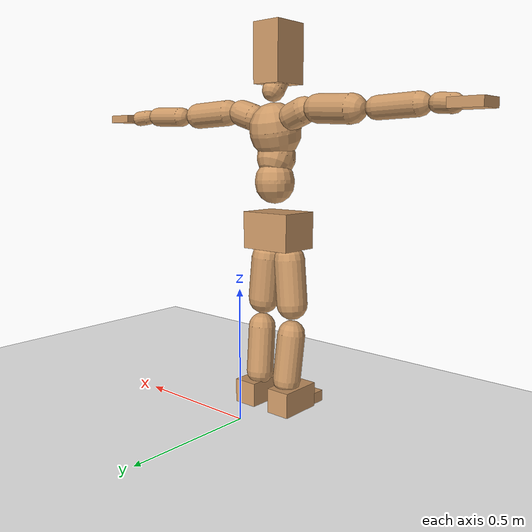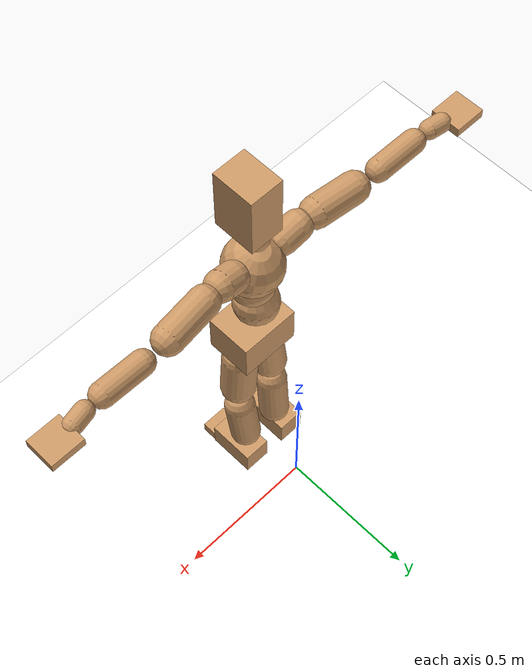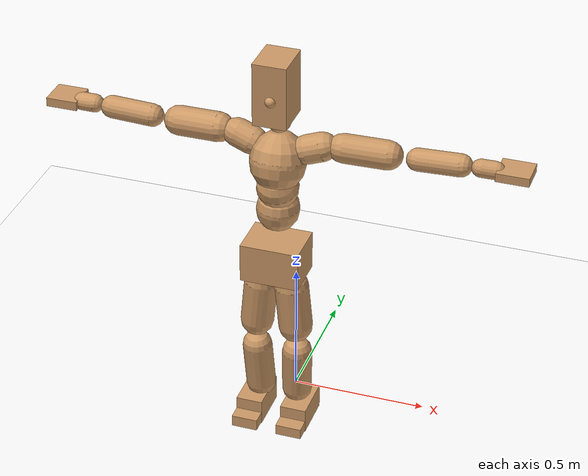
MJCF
<mujoco model="humanoid">
  <option integrator="implicitfast" />

  <visual>
    <global offwidth="1280" offheight="960" />
    <headlight active="1" ambient="0.34 0.34 0.34" diffuse="0.5 0.5 0.5" />
  </visual>

  <default>
    <joint damping="2" stiffness="2" armature="0.01" limited="true" solimplimit="0 .99 .01" />
    <geom condim="1" friction="0.7 0.005 0.0001" solimp=".99 .99 .003" solref="0.015 1" margin="0.001" rgba="0.8 0.6 .4 1" />
    <default class="smplcontact">
      <geom condim="3" friction="1. 0.005 0.0001" solref="0.015 1" solimp="0.98 0.98 0.001" priority="1" />
    </default>
    <default class="stiff_medium">
      <joint stiffness="10" />
    </default>
    <default class="stiff_medium_higher">
      <joint stiffness="50" />
    </default>
    <default class="stiff_high">
      <joint stiffness="100" />
    </default>
  </default>

  <asset>
    <texture type="skybox" builtin="gradient" rgb1="0.99 0.99 0.99" rgb2="0.608 0.828 0.892" width="100" />
    <texture builtin="flat" height="1278" mark="cross" markrgb="1 1 1" name="texgeom" random="0.01" rgb1="0.8 0.6 0.4" rgb2="0.8 0.6 0.4" type="cube" width="127" />
    <texture name="texplane" type="2d" builtin="checker" markrgb="1 1 1" rgb1="0.756 0.772 0.76" rgb2="0.6 0.6 0.6" width="100" height="100" />
    <material name="MatPlane" reflectance="0.5" texture="texplane" texrepeat="1 1" texuniform="true" />
    <material name="geom" texture="texgeom" texuniform="true" />
  </asset>

  <worldbody>
    <light name="tracking_light" pos="0 0 7" dir="0 0 -1" directional="true" cutoff="100" exponent="1" diffuse="1 1 1" specular="0.1 0.1 0.1" mode="trackcom" />
    <camera name="back" pos="0 3 2.4" xyaxes="-1 0 0 0 -1 2" mode="trackcom" />
    <camera name="side" pos="-3 0 2.4" xyaxes="0 -1 0 1 0 2" mode="trackcom" />
    <camera name="front_side" pos="-2.8 -2.8 0.8" xyaxes="0.5 -0.5 0 0.1 0.1 1" mode="trackcom" />
    <geom condim="3" name="floor" pos="0 0 0" rgba="1 1 1 1" size="100 100 .2" type="plane" material="MatPlane" />
    <body name="Pelvis" pos="-0.0018 -0.2233 0.714475" euler="90 0 0">
      <site name="Pelvis" size="0.01" />
      <freejoint name="Pelvis" />
      <geom type="box" pos="-0.0000 -0.0121 -0.0055" size="0.1069 0.0722 0.083" quat="1.0000 0.0000 0.0000 0.0000" density="3165.830099" name="Pelvis" />
      <body name="L_Hip" pos="0.052125 -0.06855 -0.0051">
        <joint name="L_Hip_x" type="hinge" pos="0 0 0" axis="1 0 0" stiffness="6.2499312499999995" range="-160.0 22.92" class="stiff_medium" damping="8.293620912373628" armature="0.004891370984683404"/>
        <joint name="L_Hip_y" type="hinge" pos="0 0 0" axis="0 1 0" stiffness="6.281426704545455" range="-70.0 70.0" class="stiff_medium" damping="6.621149357464152" armature="0.006979245460609147"/>
        <joint name="L_Hip_z" type="hinge" pos="0 0 0" axis="0 0 1" stiffness="6.2747121590909085" range="-28.65 90.0" class="stiff_medium" damping="5.538200647625736" armature="0.004888139190404853"/>
        <geom type="capsule" density="2040.816327" fromto="0.005175 -0.05625 -0.000675 0.02055 -0.22515 -0.0027" size="0.0615" name="L_Hip" />
        <body name="L_Knee" pos="0.025725 -0.2814 -0.003375">
          <joint name="L_Knee_x" type="hinge" pos="0 0 0" axis="1 0 0" range="-5.16 171.89" damping="4.633921545188721" armature="0.00518297351252149" stiffness="1.2946977272727274"/>
          <joint name="L_Knee_y" type="hinge" pos="0 0 0" axis="0 1 0" range="-4.58 6.88" damping="5.460969895837581" armature="0.007381715461698133" stiffness="1.2625026136363637"/>
          <joint name="L_Knee_z" type="hinge" pos="0 0 0" axis="0 0 1" range="-6.88 4.58" damping="4.634259059766028" armature="0.005166231774225988" stiffness="1.2990825549682876"/>
          <geom type="capsule" density="1234.567901" fromto="-0.002025 -0.0597 -0.006525 -0.008175 -0.2388 -0.02625" size="0.0541" name="L_Knee" />
          <body name="L_Ankle" pos="-0.0102 -0.2985 -0.032775">
            <joint name="L_Ankle_x" type="hinge" pos="0 0 0" axis="1 0 0" range="-45.84 45.84" class="stiff_medium" damping="4.385268345779602" armature="0.007122436468332061" stiffness="7.5"/>
            <joint name="L_Ankle_y" type="hinge" pos="0 0 0" axis="0 1 0" range="-74.48 22.92" class="stiff_medium" damping="2.209050591087885" armature="0.007229488168867752" stiffness="7.5"/>
            <joint name="L_Ankle_z" type="hinge" pos="0 0 0" axis="0 0 1" range="-4.58 4.58" class="stiff_medium" damping="4.6272932844075285" armature="0.00793031227404556" stiffness="7.5"/>
            <geom type="box" pos="0.017475 -0.017925 0.01815" size="0.0483 0.0464 0.085" quat="1.0000 0.0000 0.0000 0.0000" density="449.071558" name="L_Ankle" class="smplcontact" />
            <body name="L_Toe" pos="0.0198 -0.04185 0.089475">
              <joint name="L_Toe_x" type="hinge" pos="0 0 0" axis="1 0 0" range="-91.67 22.92" armature="0.008336677887504028" damping="1.5814560905226576" stiffness="1.5"/>
              <joint name="L_Toe_y" type="hinge" pos="0 0 0" axis="0 1 0" range="-4.58 4.58" armature="0.008828055290798205" damping="1.6273956455759186" stiffness="1.5"/>
              <joint name="L_Toe_z" type="hinge" pos="0 0 0" axis="0 0 1" range="-4.58 4.58" armature="0.009821593951993944" damping="1.7165308577471547" stiffness="1.5"/>
              <geom type="box" pos="-0.00225 0.004125 0.0186" size="0.0478 0.02 0.0496" quat="1.0000 0.0000 0.0000 0.0000" density="423.206892" name="L_Toe" class="smplcontact" />
            </body>
          </body>
        </body>
      </body>
      <body name="R_Hip" pos="-0.050775 -0.067875 -0.003225">
        <joint name="R_Hip_x" type="hinge" pos="0 0 0" axis="1 0 0" stiffness="6.2499312499999995" range="-160.0 22.92" class="stiff_medium" damping="8.293620912373628" armature="0.004891370984683404"/>
        <joint name="R_Hip_y" type="hinge" pos="0 0 0" axis="0 1 0" stiffness="6.281426704545455" range="-70.0 70.0" class="stiff_medium" damping="6.621149357464152" armature="0.006979245460609147"/>
        <joint name="R_Hip_z" type="hinge" pos="0 0 0" axis="0 0 1" stiffness="6.2747121590909085" range="-90.0 28.65" class="stiff_medium" damping="5.538200647625736" armature="0.004888139190404853"/>
        <geom type="capsule" density="2040.816327" fromto="-0.005775 -0.057375 -0.00135 -0.02295 -0.229575 -0.005325" size="0.0606" name="R_Hip" />
        <body name="R_Knee" pos="-0.028725 -0.28695 -0.006675">
          <joint name="R_Knee_x" type="hinge" pos="0 0 0" axis="1 0 0" range="-5.16 171.89" damping="4.633921545188721" armature="0.00518297351252149" stiffness="1.2946977272727274"/>
          <joint name="R_Knee_y" type="hinge" pos="0 0 0" axis="0 1 0" range="-6.88 4.58" damping="5.460969895837581" armature="0.007381715461698133" stiffness="1.2625026136363637"/>
          <joint name="R_Knee_z" type="hinge" pos="0 0 0" axis="0 0 1" range="-4.58 6.88" damping="4.634259059766028" armature="0.005166231774225988" stiffness="1.2990825549682876"/>
          <geom type="capsule" density="1234.567901" fromto="0.0024 -0.059775 -0.006375 0.00945 -0.239025 -0.02535" size="0.0541" name="R_Knee" />
          <body name="R_Ankle" pos="0.01185 -0.2988 -0.031725">
            <joint name="R_Ankle_x" type="hinge" pos="0 0 0" axis="1 0 0" range="-45.84 45.84" class="stiff_medium" damping="4.385268345779602" armature="0.007122436468332061" stiffness="7.5"/>
            <joint name="R_Ankle_y" type="hinge" pos="0 0 0" axis="0 1 0" range="-22.92 74.48" class="stiff_medium" damping="2.209050591087885" armature="0.007229488168867752" stiffness="7.5"/>
            <joint name="R_Ankle_z" type="hinge" pos="0 0 0" axis="0 0 1" range="-4.58 4.58" class="stiff_medium" damping="4.6272932844075285" armature="0.00793031227404556" stiffness="7.5"/>
            <geom type="box" pos="-0.0159 -0.01305 0.0192" size="0.0483 0.0478 0.0865" quat="1.0000 0.0000 0.0000 0.0000" density="434.700981" name="R_Ankle" class="smplcontact" />
            <body name="R_Toe" pos="-0.01905 -0.036075 0.092475">
              <joint name="R_Toe_x" type="hinge" pos="0 0 0" axis="1 0 0" range="-91.67 22.92" armature="0.008336677887504028" damping="1.5814560905226576" stiffness="1.5"/>
              <joint name="R_Toe_y" type="hinge" pos="0 0 0" axis="0 1 0" range="-4.58 4.58" armature="0.008828055290798205" damping="1.6273956455759186" stiffness="1.5"/>
              <joint name="R_Toe_z" type="hinge" pos="0 0 0" axis="0 0 1" range="-4.58 4.58" armature="0.009821593951993944" damping="1.7165308577471547" stiffness="1.5"/>
              <geom type="box" pos="0.00315 0.003375 0.017025" size="0.0479 0.0216 0.0493" quat="1.0000 0.0000 0.0000 0.0000" density="407.384095" name="R_Toe" class="smplcontact" />
            </body>
          </body>
        </body>
      </body>
      <body name="Torso" pos="-0.0025 0.109 -0.0267">
        <joint name="Torso_x" type="hinge" pos="0 0 0" axis="1 0 0" range="-25.78 57.3" class="stiff_medium" damping="15.000000000000004" armature="0.010000000000000005" stiffness="10.0"/>
        <joint name="Torso_y" type="hinge" pos="0 0 0" axis="0 1 0" range="-57.3 57.3" class="stiff_high" damping="20.0" armature="0.010000000000000002" stiffness="100.0"/>
        <joint name="Torso_z" type="hinge" pos="0 0 0" axis="0 0 1" range="-34.38 34.38" class="stiff_high" damping="19.999999999999996" armature="0.009999999999999998" stiffness="100.0"/>
        <geom type="capsule" density="2040.816327" fromto="0.0025 0.0608 0.0005 0.003 0.0743 0.0006" size="0.0769" name="Torso" />
        <body name="Spine" pos="0.0055 0.1352 0.0011">
          <joint name="Spine_x" type="hinge" pos="0 0 0" axis="1 0 0" stiffness="10.0" range="-25.78 57.3" class="stiff_medium" damping="15.000000000000004" armature="0.010000000000000007"/>
          <joint name="Spine_y" type="hinge" pos="0 0 0" axis="0 1 0" stiffness="10.0" range="-57.3 57.3" class="stiff_high" damping="8.0" armature="0.010000000000000002"/>
          <joint name="Spine_z" type="hinge" pos="0 0 0" axis="0 0 1" stiffness="20.0" range="-34.38 34.38" class="stiff_high" damping="11.999999999999998" armature="0.009999999999999998"/>
          <geom type="capsule" density="2040.816327" fromto="0.0007 0.0238 0.0114 0.0008 0.0291 0.014" size="0.0755" name="Spine" />
          <body name="Chest" pos="0.0015 0.0529 0.0254">
            <joint name="Chest_x" type="hinge" pos="0 0 0" axis="1 0 0" stiffness="10.0" range="-25.78 57.3" class="stiff_medium" damping="14.999999999999996" armature="0.009999999999999995"/>
            <joint name="Chest_y" type="hinge" pos="0 0 0" axis="0 1 0" stiffness="10.0" range="-57.3 57.3" class="stiff_high" damping="8.0" armature="0.010000000000000002"/>
            <joint name="Chest_z" type="hinge" pos="0 0 0" axis="0 0 1" stiffness="20.0" range="-34.38 34.38" class="stiff_high" damping="11.999999999999998" armature="0.009999999999999998"/>
            <geom type="capsule" density="2040.816327" fromto="-0.0009 0.0682 -0.0173 -0.001 0.0833 -0.0212" size="0.1002" name="Chest" />
            <body name="Neck" pos="-0.0028 0.2139 -0.0429">
              <joint name="Neck_x" type="hinge" pos="0 0 0" axis="1 0 0" range="-28.65 57.3" class="stiff_medium_higher" damping="9.999999999999993" armature="0.009999999999999988" stiffness="50.0"/>
              <joint name="Neck_y" type="hinge" pos="0 0 0" axis="0 1 0" range="-40.11 40.11" class="stiff_medium_higher" damping="10.0" armature="0.01" stiffness="50.0"/>
              <joint name="Neck_z" type="hinge" pos="0 0 0" axis="0 0 1" range="-40.11 40.11" class="stiff_medium_higher" damping="9.999999999999996" armature="0.009999999999999992" stiffness="50.0"/>
              <geom type="capsule" density="1000" fromto="0.001 0.013 0.0103 0.0041 0.052 0.0411" size="0.0436" name="Neck" />
              <body name="Head" pos="0.0052 0.065 0.0513">
                <joint name="Head_x" type="hinge" pos="0 0 0" axis="1 0 0" range="-28.65 57.3" class="stiff_medium_higher" damping="1.999999999999995" armature="0.00999999999999995" stiffness="50.0"/>
                <joint name="Head_y" type="hinge" pos="0 0 0" axis="0 1 0" range="-40.11 40.11" class="stiff_medium_higher" damping="2.0" armature="0.01" stiffness="50.0"/>
                <joint name="Head_z" type="hinge" pos="0 0 0" axis="0 0 1" range="-40.11 40.11" class="stiff_medium_higher" damping="1.9999999999999973" armature="0.009999999999999974" stiffness="50.0"/>
                <geom type="box" pos="-0.0042 0.0876 -0.0116" size="0.0606 0.1154 0.076" quat="1.0000 0.0000 0.0000 0.0000" density="1018.069894" name="Head" />
                <geom type="capsule" name="nose" size="0.02 0.01" pos="0 0.07 0.05" quat="1 0 0 0" mass="0" contype="0" conaffinity="0" />
              </body>
            </body>
            <body name="L_Thorax" pos="0.0788 0.1217 -0.0341">
              <joint name="L_Thorax_x" type="hinge" pos="0 0 0" axis="1 0 0" range="-10.89 4.58" class="stiff_medium_higher" damping="20.000000000000018" armature="0.010000000000000021" stiffness="50.0"/>
              <joint name="L_Thorax_y" type="hinge" pos="0 0 0" axis="0 1 0" range="-28.65 17.19" class="stiff_medium_higher" damping="20.0" armature="0.010000000000000002" stiffness="50.0"/>
              <joint name="L_Thorax_z" type="hinge" pos="0 0 0" axis="0 0 1" range="-31.51 40.11" class="stiff_medium_higher" damping="20.0" armature="0.01" stiffness="50.0"/>
              <geom type="capsule" density="1000" fromto="0.0182 0.0061 -0.0018 0.0728 0.0244 -0.0071" size="0.0521" name="L_Thorax" />
              <body name="L_Shoulder" pos="0.091 0.0305 -0.0089">
                <joint name="L_Shoulder_x" type="hinge" pos="0 0 0" axis="1 0 0" range="-97.4 97.4" class="stiff_medium" damping="6.000000000000002" armature="0.010000000000000007" stiffness="10.0"/>
                <joint name="L_Shoulder_y" type="hinge" pos="0 0 0" axis="0 1 0" range="-108.86 80.21" class="stiff_medium" damping="5.999999999999998" armature="0.009999999999999995" stiffness="10.0"/>
                <joint name="L_Shoulder_z" type="hinge" pos="0 0 0" axis="0 0 1" range="-97.4 85.94" class="stiff_medium" damping="6.0" armature="0.010000000000000002" stiffness="10.0"/>
                <geom type="capsule" density="1000" fromto="0.0519 -0.0026 -0.0055 0.2077 -0.0102 -0.022" size="0.0517" name="L_Shoulder" />
                <body name="L_Elbow" pos="0.2596 -0.0128 -0.0275">
                  <joint name="L_Elbow_x" type="hinge" pos="0 0 0" axis="1 0 0" range="-17.19 4.58" damping="4.999999999999955" armature="0.00999999999999982" stiffness="2.0"/>
                  <joint name="L_Elbow_y" type="hinge" pos="0 0 0" axis="0 1 0" range="-180.0 17.19" damping="5.000000000000002" armature="0.01000000000000001" stiffness="2.0"/>
                  <joint name="L_Elbow_z" type="hinge" pos="0 0 0" axis="0 0 1" range="-100.84 4.58" damping="5.0" armature="0.01" stiffness="2.0"/>
                  <geom type="capsule" density="1000" fromto="0.0498 0.0018 -0.0002 0.1994 0.0072 -0.0009" size="0.0405" name="L_Elbow" />
                  <body name="L_Wrist" pos="0.2492 0.009 -0.0012">
                    <joint name="L_Wrist_x" type="hinge" pos="0 0 0" axis="1 0 0" range="-180.0 22.92" armature="0.009999999999999619" damping="1.9999999999999618" stiffness="2.0"/>
                    <joint name="L_Wrist_y" type="hinge" pos="0 0 0" axis="0 1 0" range="-17.19 17.19" armature="0.010000000000000009" damping="2.000000000000001" stiffness="2.0"/>
                    <joint name="L_Wrist_z" type="hinge" pos="0 0 0" axis="0 0 1" range="-22.92 22.92" armature="0.010000000000000018" damping="2.0000000000000018" stiffness="2.0"/>
                    <geom type="capsule" density="1000" fromto="0.0168 -0.0016 -0.003 0.0672 -0.0065 -0.012" size="0.0318" name="L_Wrist" class="smplcontact" />
                    <body name="L_Hand" pos="0.084 -0.0082 -0.0149">
                      <joint name="L_Hand_x" type="hinge" pos="0 0 0" axis="1 0 0" range="-17.19 17.19" armature="0.009999999999999959" damping="1.9999999999999958" stiffness="2.0"/>
                      <joint name="L_Hand_y" type="hinge" pos="0 0 0" axis="0 1 0" range="-51.57 51.57" armature="0.009999999999999813" damping="1.9999999999999813" stiffness="2.0"/>
                      <joint name="L_Hand_z" type="hinge" pos="0 0 0" axis="0 0 1" range="-91.67 91.67" armature="0.010000000000000085" damping="2.0000000000000084" stiffness="2.0"/>
                      <geom type="box" pos="0.0493 0.001 -0.0058" size="0.0585 0.0158 0.0538" quat="1.0000 0.0000 0.0000 0.0000" density="400.552564" name="L_Hand" class="smplcontact" />
                    </body>
                  </body>
                </body>
              </body>
            </body>
            <body name="R_Thorax" pos="-0.0818 0.1188 -0.0386">
              <joint name="R_Thorax_x" type="hinge" pos="0 0 0" axis="1 0 0" range="-10.89 4.58" class="stiff_medium_higher" damping="20.000000000000018" armature="0.010000000000000021" stiffness="50.0"/>
              <joint name="R_Thorax_y" type="hinge" pos="0 0 0" axis="0 1 0" range="-17.19 28.65" class="stiff_medium_higher" damping="20.0" armature="0.010000000000000002" stiffness="50.0"/>
              <joint name="R_Thorax_z" type="hinge" pos="0 0 0" axis="0 0 1" range="-40.11 31.51" class="stiff_medium_higher" damping="20.0" armature="0.01" stiffness="50.0"/>
              <geom type="capsule" density="1000" fromto="-0.0192 0.0065 -0.0018 -0.0768 0.026 -0.0073" size="0.0511" name="R_Thorax" />
              <body name="R_Shoulder" pos="-0.096 0.0326 -0.0091">
                <joint name="R_Shoulder_x" type="hinge" pos="0 0 0" axis="1 0 0" range="-97.4 97.4" class="stiff_medium" damping="6.000000000000002" armature="0.010000000000000007" stiffness="10.0"/>
                <joint name="R_Shoulder_y" type="hinge" pos="0 0 0" axis="0 1 0" range="-80.21 108.86" class="stiff_medium" damping="5.999999999999998" armature="0.009999999999999995" stiffness="10.0"/>
                <joint name="R_Shoulder_z" type="hinge" pos="0 0 0" axis="0 0 1" range="-85.94 97.4" class="stiff_medium" damping="6.0" armature="0.010000000000000002" stiffness="10.0"/>
                <geom type="capsule" density="1000" fromto="-0.0507 -0.0027 -0.0043 -0.203 -0.0107 -0.0171" size="0.0531" name="R_Shoulder" />
                <body name="R_Elbow" pos="-0.2537 -0.0133 -0.0214">
                  <joint name="R_Elbow_x" type="hinge" pos="0 0 0" axis="1 0 0" range="-17.19 4.58" damping="4.999999999999955" armature="0.00999999999999982" stiffness="2.0"/>
                  <joint name="R_Elbow_y" type="hinge" pos="0 0 0" axis="0 1 0" range="-17.19 180.0" damping="5.000000000000002" armature="0.01000000000000001" stiffness="2.0"/>
                  <joint name="R_Elbow_z" type="hinge" pos="0 0 0" axis="0 0 1" range="-4.58 100.84" damping="5.0" armature="0.01" stiffness="2.0"/>
                  <geom type="capsule" density="1000" fromto="-0.0511 0.0016 -0.0011 -0.2042 0.0062 -0.0044" size="0.0408" name="R_Elbow" />
                  <body name="R_Wrist" pos="-0.2553 0.0078 -0.0056">
                    <joint name="R_Wrist_x" type="hinge" pos="0 0 0" axis="1 0 0" range="-180.0 22.92" armature="0.009999999999999619" damping="1.9999999999999618" stiffness="2.0"/>
                    <joint name="R_Wrist_y" type="hinge" pos="0 0 0" axis="0 1 0" range="-17.19 17.19" armature="0.010000000000000009" damping="2.000000000000001" stiffness="2.0"/>
                    <joint name="R_Wrist_z" type="hinge" pos="0 0 0" axis="0 0 1" range="-22.92 22.92" armature="0.010000000000000018" damping="2.0000000000000018" stiffness="2.0"/>
                    <geom type="capsule" density="1000" fromto="-0.0169 -0.0012 -0.0021 -0.0677 -0.0049 -0.0083" size="0.0326" name="R_Wrist" class="smplcontact" />
                    <body name="R_Hand" pos="-0.0846 -0.0061 -0.0103">
                      <joint name="R_Hand_x" type="hinge" pos="0 0 0" axis="1 0 0" range="-17.19 17.19" armature="0.009999999999999959" damping="1.9999999999999958" stiffness="2.0"/>
                      <joint name="R_Hand_y" type="hinge" pos="0 0 0" axis="0 1 0" range="-51.57 51.57" armature="0.009999999999999813" damping="1.9999999999999813" stiffness="2.0"/>
                      <joint name="R_Hand_z" type="hinge" pos="0 0 0" axis="0 0 1" range="-91.67 91.67" armature="0.010000000000000085" damping="2.0000000000000084" stiffness="2.0"/>
                      <geom type="box" pos="-0.0462 -0.0009 -0.0079" size="0.0569 0.0164 0.0546" quat="1.0000 0.0000 0.0000 0.0000" density="403.679611" name="R_Hand" class="smplcontact" />
                    </body>
                  </body>
                </body>
              </body>
            </body>
          </body>
        </body>
      </body>
    </body>
  </worldbody>
  <actuator>
    <general name="L_Hip_x" joint="L_Hip_x" biastype="affine" gainprm="179.57931466663584" biasprm="-134.57649494042445 -112.49876249999998 -1.105816121649817" ctrllimited="true" ctrlrange="-1 1" forcerange="-224.99752499999997 224.99752499999997" />
    <general name="L_Hip_y" joint="L_Hip_y" biastype="affine" gainprm="138.13578792343918" biasprm="0.0 -113.06568068181818 -1.3242298714928302" ctrllimited="true" ctrlrange="-1 1" forcerange="-226.13136136363636 226.13136136363636" />
    <general name="L_Hip_z" joint="L_Hip_z" biastype="affine" gainprm="116.94493793483193" biasprm="60.468368666683 -112.94481886363634 -1.1076401295251472" ctrllimited="true" ctrlrange="-1 1" forcerange="-225.88963772727269 225.88963772727269" />
    <general name="L_Knee_x" joint="L_Knee_x" biastype="affine" gainprm="180.03386209726628" biasprm="169.5399368962282 -116.52279545454546 -1.1584803862971802" ctrllimited="true" ctrlrange="-1 1" forcerange="-233.04559090909092 233.04559090909092" />
    <general name="L_Knee_y" joint="L_Knee_y" biastype="affine" gainprm="11.363360502035121" biasprm="2.2806046382793 -113.62523522727274 -1.3652424739593954" ctrllimited="true" ctrlrange="-1 1" forcerange="-227.25047045454548 227.25047045454548" />
    <general name="L_Knee_z" joint="L_Knee_z" biastype="affine" gainprm="11.692604224787264" biasprm="-2.3466832213796427 -116.91742994714589 -1.158564764941507" ctrllimited="true" ctrlrange="-1 1" forcerange="-233.83485989429178 233.83485989429178" />
    <general name="L_Ankle_x" joint="L_Ankle_x" biastype="affine" gainprm="54.00397771520855" biasprm="0.0 -67.5 -1.4617561152598673" ctrllimited="true" ctrlrange="-1 1" forcerange="-135.0 135.0" />
    <general name="L_Ankle_y" joint="L_Ankle_y" biastype="affine" gainprm="57.37333583618361" biasprm="-30.371346978579332 -67.5 -1.4727003940585899" ctrllimited="true" ctrlrange="-1 1" forcerange="-135.0 135.0" />
    <general name="L_Ankle_z" joint="L_Ankle_z" biastype="affine" gainprm="5.395685382540469" biasprm="0.0 -67.5 -1.5424310948025095" ctrllimited="true" ctrlrange="-1 1" forcerange="-135.0 135.0" />
    <general name="L_Toe_x" joint="L_Toe_x" biastype="affine" gainprm="53.999265326228155" biasprm="-32.39767424014474 -54.0 -0.6325824362090631" ctrllimited="true" ctrlrange="-1 1" forcerange="-108.0 108.0" />
    <general name="L_Toe_y" joint="L_Toe_y" biastype="affine" gainprm="4.3165483060323755" biasprm="0.0 -54.0 -0.6509582582303675" ctrllimited="true" ctrlrange="-1 1" forcerange="-108.0 108.0" />
    <general name="L_Toe_z" joint="L_Toe_z" biastype="affine" gainprm="4.3165483060323755" biasprm="0.0 -54.0 -0.686612343098862" ctrllimited="true" ctrlrange="-1 1" forcerange="-108.0 108.0" />
    <general name="R_Hip_x" joint="R_Hip_x" biastype="affine" gainprm="179.57931466663584" biasprm="-134.57649494042445 -112.49876249999998 -1.105816121649817" ctrllimited="true" ctrlrange="-1 1" forcerange="-224.99752499999997 224.99752499999997" />
    <general name="R_Hip_y" joint="R_Hip_y" biastype="affine" gainprm="138.13578792343918" biasprm="0.0 -113.06568068181818 -1.3242298714928302" ctrllimited="true" ctrlrange="-1 1" forcerange="-226.13136136363636 226.13136136363636" />
    <general name="R_Hip_z" joint="R_Hip_z" biastype="affine" gainprm="116.94493793483193" biasprm="-60.468368666683 -112.94481886363634 -1.1076401295251472" ctrllimited="true" ctrlrange="-1 1" forcerange="-225.88963772727269 225.88963772727269" />
    <general name="R_Knee_x" joint="R_Knee_x" biastype="affine" gainprm="180.03386209726628" biasprm="169.5399368962282 -116.52279545454546 -1.1584803862971802" ctrllimited="true" ctrlrange="-1 1" forcerange="-233.04559090909092 233.04559090909092" />
    <general name="R_Knee_y" joint="R_Knee_y" biastype="affine" gainprm="11.363360502035121" biasprm="-2.2806046382793 -113.62523522727274 -1.3652424739593954" ctrllimited="true" ctrlrange="-1 1" forcerange="-227.25047045454548 227.25047045454548" />
    <general name="R_Knee_z" joint="R_Knee_z" biastype="affine" gainprm="11.692604224787264" biasprm="2.3466832213796427 -116.91742994714589 -1.158564764941507" ctrllimited="true" ctrlrange="-1 1" forcerange="-233.83485989429178 233.83485989429178" />
    <general name="R_Ankle_x" joint="R_Ankle_x" biastype="affine" gainprm="54.00397771520855" biasprm="0.0 -67.5 -1.4617561152598673" ctrllimited="true" ctrlrange="-1 1" forcerange="-135.0 135.0" />
    <general name="R_Ankle_y" joint="R_Ankle_y" biastype="affine" gainprm="57.37333583618361" biasprm="30.371346978579332 -67.5 -1.4727003940585899" ctrllimited="true" ctrlrange="-1 1" forcerange="-135.0 135.0" />
    <general name="R_Ankle_z" joint="R_Ankle_z" biastype="affine" gainprm="5.395685382540469" biasprm="0.0 -67.5 -1.5424310948025095" ctrllimited="true" ctrlrange="-1 1" forcerange="-135.0 135.0" />
    <general name="R_Toe_x" joint="R_Toe_x" biastype="affine" gainprm="53.999265326228155" biasprm="-32.39767424014474 -54.0 -0.6325824362090631" ctrllimited="true" ctrlrange="-1 1" forcerange="-108.0 108.0" />
    <general name="R_Toe_y" joint="R_Toe_y" biastype="affine" gainprm="4.3165483060323755" biasprm="0.0 -54.0 -0.6509582582303675" ctrllimited="true" ctrlrange="-1 1" forcerange="-108.0 108.0" />
    <general name="R_Toe_z" joint="R_Toe_z" biastype="affine" gainprm="4.3165483060323755" biasprm="0.0 -54.0 -0.686612343098862" ctrllimited="true" ctrlrange="-1 1" forcerange="-108.0 108.0" />
    <general name="Torso_x" joint="Torso_x" biastype="affine" gainprm="174.00234510682668" biasprm="66.0153336274335 -240.0 -4.000000000000001" ctrllimited="true" ctrlrange="-1 1" forcerange="-360.0 360.0" />
    <general name="Torso_y" joint="Torso_y" biastype="affine" gainprm="240.0176787342602" biasprm="0.0 -240.0 -4.0" ctrllimited="true" ctrlrange="-1 1" forcerange="-360.0 360.0" />
    <general name="Torso_z" joint="Torso_z" biastype="affine" gainprm="144.01060724055614" biasprm="0.0 -240.0 -3.9999999999999996" ctrllimited="true" ctrlrange="-1 1" forcerange="-360.0 360.0" />
    <general name="Spine_x" joint="Spine_x" biastype="affine" gainprm="174.00234510682668" biasprm="66.0153336274335 -240.0 -4.000000000000001" ctrllimited="true" ctrlrange="-1 1" forcerange="-360.0 360.0" />
    <general name="Spine_y" joint="Spine_y" biastype="affine" gainprm="240.0176787342602" biasprm="0.0 -240.0 -4.0" ctrllimited="true" ctrlrange="-1 1" forcerange="-360.0 360.0" />
    <general name="Spine_z" joint="Spine_z" biastype="affine" gainprm="144.01060724055614" biasprm="0.0 -240.0 -3.9999999999999996" ctrllimited="true" ctrlrange="-1 1" forcerange="-360.0 360.0" />
    <general name="Chest_x" joint="Chest_x" biastype="affine" gainprm="174.00234510682668" biasprm="66.0153336274335 -240.0 -3.999999999999999" ctrllimited="true" ctrlrange="-1 1" forcerange="-360.0 360.0" />
    <general name="Chest_y" joint="Chest_y" biastype="affine" gainprm="240.0176787342602" biasprm="0.0 -240.0 -4.0" ctrllimited="true" ctrlrange="-1 1" forcerange="-360.0 360.0" />
    <general name="Chest_z" joint="Chest_z" biastype="affine" gainprm="144.01060724055614" biasprm="0.0 -240.0 -3.9999999999999996" ctrllimited="true" ctrlrange="-1 1" forcerange="-360.0 360.0" />
    <general name="Neck_x" joint="Neck_x" biastype="affine" gainprm="27.00198885760427" biasprm="9.000662952534757 -36.0 -0.7999999999999995" ctrllimited="true" ctrlrange="-1 1" forcerange="-72.0 72.0" />
    <general name="Neck_y" joint="Neck_y" biastype="affine" gainprm="25.20185626709732" biasprm="0.0 -36.0 -0.8" ctrllimited="true" ctrlrange="-1 1" forcerange="-72.0 72.0" />
    <general name="Neck_z" joint="Neck_z" biastype="affine" gainprm="25.20185626709732" biasprm="0.0 -36.0 -0.7999999999999997" ctrllimited="true" ctrlrange="-1 1" forcerange="-72.0 72.0" />
    <general name="Head_x" joint="Head_x" biastype="affine" gainprm="18.001325905069514" biasprm="6.000441968356505 -24.0 -0.799999999999998" ctrllimited="true" ctrlrange="-1 1" forcerange="-48.0 48.0" />
    <general name="Head_y" joint="Head_y" biastype="affine" gainprm="16.801237511398213" biasprm="0.0 -24.0 -0.8" ctrllimited="true" ctrlrange="-1 1" forcerange="-48.0 48.0" />
    <general name="Head_z" joint="Head_z" biastype="affine" gainprm="16.801237511398213" biasprm="0.0 -24.0 -0.7999999999999989" ctrllimited="true" ctrlrange="-1 1" forcerange="-48.0 48.0" />
    <general name="L_Thorax_x" joint="L_Thorax_x" biastype="affine" gainprm="16.200146117011364" biasprm="-6.6078165480505335 -120.0 -1.6000000000000014" ctrllimited="true" ctrlrange="-1 1" forcerange="-240.0 240.0" />
    <general name="L_Thorax_y" joint="L_Thorax_y" biastype="affine" gainprm="48.00353574685204" biasprm="-12.00088393671301 -120.0 -1.6" ctrllimited="true" ctrlrange="-1 1" forcerange="-240.0 240.0" />
    <general name="L_Thorax_z" joint="L_Thorax_z" biastype="affine" gainprm="75.00028861670033" biasprm="9.00589894029074 -120.0 -1.6" ctrllimited="true" ctrlrange="-1 1" forcerange="-240.0 240.0" />
    <general name="L_Shoulder_x" joint="L_Shoulder_x" biastype="affine" gainprm="81.5976331892389" biasprm="0.0 -48.0 -1.6000000000000005" ctrllimited="true" ctrlrange="-1 1" forcerange="-96.0 96.0" />
    <general name="L_Shoulder_y" joint="L_Shoulder_y" biastype="affine" gainprm="79.19745640189629" biasprm="-12.00088393671301 -48.0 -1.5999999999999996" ctrllimited="true" ctrlrange="-1 1" forcerange="-96.0 96.0" />
    <general name="L_Shoulder_z" joint="L_Shoulder_z" biastype="affine" gainprm="76.79727961455369" biasprm="-4.800353574685214 -48.0 -1.6" ctrllimited="true" ctrlrange="-1 1" forcerange="-96.0 96.0" />
    <general name="L_Elbow_x" joint="L_Elbow_x" biastype="affine" gainprm="13.67849441372996" biasprm="-7.923096672353461 -72.0 -0.7999999999999928" ctrllimited="true" ctrlrange="-1 1" forcerange="-144.0 144.0" />
    <general name="L_Elbow_y" joint="L_Elbow_y" biastype="affine" gainprm="123.89813107227425" biasprm="-102.29653998619085 -72.0 -0.8000000000000004" ctrllimited="true" ctrlrange="-1 1" forcerange="-144.0 144.0" />
    <general name="L_Elbow_z" joint="L_Elbow_z" biastype="affine" gainprm="66.23733950828719" biasprm="-60.4819417669107 -72.0 -0.8" ctrllimited="true" ctrlrange="-1 1" forcerange="-144.0 144.0" />
    <general name="L_Wrist_x" joint="L_Wrist_x" biastype="affine" gainprm="21.24973270888136" biasprm="-16.449379134196157 -12.0 -0.7999999999999847" ctrllimited="true" ctrlrange="-1 1" forcerange="-24.0 24.0" />
    <general name="L_Wrist_y" joint="L_Wrist_y" biastype="affine" gainprm="3.6002651810139037" biasprm="0.0 -12.0 -0.8000000000000004" ctrllimited="true" ctrlrange="-1 1" forcerange="-24.0 24.0" />
    <general name="L_Wrist_z" joint="L_Wrist_z" biastype="affine" gainprm="4.800353574685205" biasprm="0.0 -12.0 -0.8000000000000007" ctrllimited="true" ctrlrange="-1 1" forcerange="-24.0 24.0" />
    <general name="L_Hand_x" joint="L_Hand_x" biastype="affine" gainprm="3.6002651810139037" biasprm="0.0 -12.0 -0.7999999999999984" ctrllimited="true" ctrlrange="-1 1" forcerange="-24.0 24.0" />
    <general name="L_Hand_y" joint="L_Hand_y" biastype="affine" gainprm="10.800795543041708" biasprm="0.0 -12.0 -0.7999999999999926" ctrllimited="true" ctrlrange="-1 1" forcerange="-24.0 24.0" />
    <general name="L_Hand_z" joint="L_Hand_z" biastype="affine" gainprm="19.199319903638422" biasprm="0.0 -12.0 -0.8000000000000034" ctrllimited="true" ctrlrange="-1 1" forcerange="-24.0 24.0" />
    <general name="R_Thorax_x" joint="R_Thorax_x" biastype="affine" gainprm="16.200146117011364" biasprm="-6.6078165480505335 -120.0 -1.6000000000000014" ctrllimited="true" ctrlrange="-1 1" forcerange="-240.0 240.0" />
    <general name="R_Thorax_y" joint="R_Thorax_y" biastype="affine" gainprm="48.00353574685204" biasprm="12.000883936713002 -120.0 -1.6" ctrllimited="true" ctrlrange="-1 1" forcerange="-240.0 240.0" />
    <general name="R_Thorax_z" joint="R_Thorax_z" biastype="affine" gainprm="75.00028861670033" biasprm="-9.00589894029074 -120.0 -1.6" ctrllimited="true" ctrlrange="-1 1" forcerange="-240.0 240.0" />
    <general name="R_Shoulder_x" joint="R_Shoulder_x" biastype="affine" gainprm="81.5976331892389" biasprm="0.0 -48.0 -1.6000000000000005" ctrllimited="true" ctrlrange="-1 1" forcerange="-96.0 96.0" />
    <general name="R_Shoulder_y" joint="R_Shoulder_y" biastype="affine" gainprm="79.19745640189629" biasprm="12.00088393671301 -48.0 -1.5999999999999996" ctrllimited="true" ctrlrange="-1 1" forcerange="-96.0 96.0" />
    <general name="R_Shoulder_z" joint="R_Shoulder_z" biastype="affine" gainprm="76.79727961455369" biasprm="4.800353574685204 -48.0 -1.6" ctrllimited="true" ctrlrange="-1 1" forcerange="-96.0 96.0" />
    <general name="R_Elbow_x" joint="R_Elbow_x" biastype="affine" gainprm="13.67849441372996" biasprm="-7.923096672353461 -72.0 -0.7999999999999928" ctrllimited="true" ctrlrange="-1 1" forcerange="-144.0 144.0" />
    <general name="R_Elbow_y" joint="R_Elbow_y" biastype="affine" gainprm="123.89813107227425" biasprm="102.29653998619085 -72.0 -0.8000000000000004" ctrllimited="true" ctrlrange="-1 1" forcerange="-144.0 144.0" />
    <general name="R_Elbow_z" joint="R_Elbow_z" biastype="affine" gainprm="66.23733950828719" biasprm="60.481941766910694 -72.0 -0.8" ctrllimited="true" ctrlrange="-1 1" forcerange="-144.0 144.0" />
    <general name="R_Wrist_x" joint="R_Wrist_x" biastype="affine" gainprm="21.24973270888136" biasprm="-16.449379134196157 -12.0 -0.7999999999999847" ctrllimited="true" ctrlrange="-1 1" forcerange="-24.0 24.0" />
    <general name="R_Wrist_y" joint="R_Wrist_y" biastype="affine" gainprm="3.6002651810139037" biasprm="0.0 -12.0 -0.8000000000000004" ctrllimited="true" ctrlrange="-1 1" forcerange="-24.0 24.0" />
    <general name="R_Wrist_z" joint="R_Wrist_z" biastype="affine" gainprm="4.800353574685205" biasprm="0.0 -12.0 -0.8000000000000007" ctrllimited="true" ctrlrange="-1 1" forcerange="-24.0 24.0" />
    <general name="R_Hand_x" joint="R_Hand_x" biastype="affine" gainprm="3.6002651810139037" biasprm="0.0 -12.0 -0.7999999999999984" ctrllimited="true" ctrlrange="-1 1" forcerange="-24.0 24.0" />
    <general name="R_Hand_y" joint="R_Hand_y" biastype="affine" gainprm="10.800795543041708" biasprm="0.0 -12.0 -0.7999999999999926" ctrllimited="true" ctrlrange="-1 1" forcerange="-24.0 24.0" />
    <general name="R_Hand_z" joint="R_Hand_z" biastype="affine" gainprm="19.199319903638422" biasprm="0.0 -12.0 -0.8000000000000034" ctrllimited="true" ctrlrange="-1 1" forcerange="-24.0 24.0" />
  </actuator>
  <contact>
    <exclude body1="Torso" body2="Chest" />
    <exclude body1="Head" body2="Chest" />
    <exclude body1="R_Knee" body2="R_Toe" />
    <exclude body1="R_Knee" body2="L_Ankle" />
    <exclude body1="R_Knee" body2="L_Toe" />
    <exclude body1="L_Knee" body2="L_Toe" />
    <exclude body1="L_Knee" body2="R_Ankle" />
    <exclude body1="L_Knee" body2="R_Toe" />
    <exclude body1="L_Shoulder" body2="Chest" />
    <exclude body1="R_Shoulder" body2="Chest" />
  </contact>
  <sensor>
    <framelinvel name="sensor_Pelvis_framelinvel" objtype="xbody" objname="Pelvis" />
    <framelinvel name="sensor_L_Hip_framelinvel" objtype="xbody" objname="L_Hip" />
    <framelinvel name="sensor_L_Knee_framelinvel" objtype="xbody" objname="L_Knee" />
    <framelinvel name="sensor_L_Ankle_framelinvel" objtype="xbody" objname="L_Ankle" />
    <framelinvel name="sensor_L_Toe_framelinvel" objtype="xbody" objname="L_Toe" />
    <framelinvel name="sensor_R_Hip_framelinvel" objtype="xbody" objname="R_Hip" />
    <framelinvel name="sensor_R_Knee_framelinvel" objtype="xbody" objname="R_Knee" />
    <framelinvel name="sensor_R_Ankle_framelinvel" objtype="xbody" objname="R_Ankle" />
    <framelinvel name="sensor_R_Toe_framelinvel" objtype="xbody" objname="R_Toe" />
    <framelinvel name="sensor_Torso_framelinvel" objtype="xbody" objname="Torso" />
    <framelinvel name="sensor_Spine_framelinvel" objtype="xbody" objname="Spine" />
    <framelinvel name="sensor_Chest_framelinvel" objtype="xbody" objname="Chest" />
    <framelinvel name="sensor_Neck_framelinvel" objtype="xbody" objname="Neck" />
    <framelinvel name="sensor_Head_framelinvel" objtype="xbody" objname="Head" />
    <framelinvel name="sensor_L_Thorax_framelinvel" objtype="xbody" objname="L_Thorax" />
    <framelinvel name="sensor_L_Shoulder_framelinvel" objtype="xbody" objname="L_Shoulder" />
    <framelinvel name="sensor_L_Elbow_framelinvel" objtype="xbody" objname="L_Elbow" />
    <framelinvel name="sensor_L_Wrist_framelinvel" objtype="xbody" objname="L_Wrist" />
    <framelinvel name="sensor_L_Hand_framelinvel" objtype="xbody" objname="L_Hand" />
    <framelinvel name="sensor_R_Thorax_framelinvel" objtype="xbody" objname="R_Thorax" />
    <framelinvel name="sensor_R_Shoulder_framelinvel" objtype="xbody" objname="R_Shoulder" />
    <framelinvel name="sensor_R_Elbow_framelinvel" objtype="xbody" objname="R_Elbow" />
    <framelinvel name="sensor_R_Wrist_framelinvel" objtype="xbody" objname="R_Wrist" />
    <framelinvel name="sensor_R_Hand_framelinvel" objtype="xbody" objname="R_Hand" />
    <frameangvel name="sensor_Pelvis_frameangvel" objtype="xbody" objname="Pelvis" />
    <frameangvel name="sensor_L_Hip_frameangvel" objtype="xbody" objname="L_Hip" />
    <frameangvel name="sensor_L_Knee_frameangvel" objtype="xbody" objname="L_Knee" />
    <frameangvel name="sensor_L_Ankle_frameangvel" objtype="xbody" objname="L_Ankle" />
    <frameangvel name="sensor_L_Toe_frameangvel" objtype="xbody" objname="L_Toe" />
    <frameangvel name="sensor_R_Hip_frameangvel" objtype="xbody" objname="R_Hip" />
    <frameangvel name="sensor_R_Knee_frameangvel" objtype="xbody" objname="R_Knee" />
    <frameangvel name="sensor_R_Ankle_frameangvel" objtype="xbody" objname="R_Ankle" />
    <frameangvel name="sensor_R_Toe_frameangvel" objtype="xbody" objname="R_Toe" />
    <frameangvel name="sensor_Torso_frameangvel" objtype="xbody" objname="Torso" />
    <frameangvel name="sensor_Spine_frameangvel" objtype="xbody" objname="Spine" />
    <frameangvel name="sensor_Chest_frameangvel" objtype="xbody" objname="Chest" />
    <frameangvel name="sensor_Neck_frameangvel" objtype="xbody" objname="Neck" />
    <frameangvel name="sensor_Head_frameangvel" objtype="xbody" objname="Head" />
    <frameangvel name="sensor_L_Thorax_frameangvel" objtype="xbody" objname="L_Thorax" />
    <frameangvel name="sensor_L_Shoulder_frameangvel" objtype="xbody" objname="L_Shoulder" />
    <frameangvel name="sensor_L_Elbow_frameangvel" objtype="xbody" objname="L_Elbow" />
    <frameangvel name="sensor_L_Wrist_frameangvel" objtype="xbody" objname="L_Wrist" />
    <frameangvel name="sensor_L_Hand_frameangvel" objtype="xbody" objname="L_Hand" />
    <frameangvel name="sensor_R_Thorax_frameangvel" objtype="xbody" objname="R_Thorax" />
    <frameangvel name="sensor_R_Shoulder_frameangvel" objtype="xbody" objname="R_Shoulder" />
    <frameangvel name="sensor_R_Elbow_frameangvel" objtype="xbody" objname="R_Elbow" />
    <frameangvel name="sensor_R_Wrist_frameangvel" objtype="xbody" objname="R_Wrist" />
    <frameangvel name="sensor_R_Hand_frameangvel" objtype="xbody" objname="R_Hand" />
    <subtreelinvel name="Chest_subtreelinvel" body="Chest" />
    <gyro name="Pelvis_gyro" site="Pelvis" />
  </sensor>
</mujoco>
